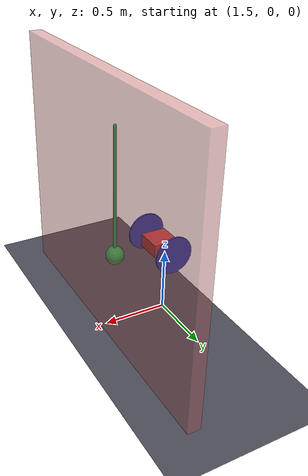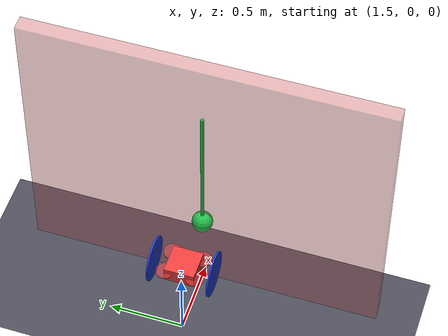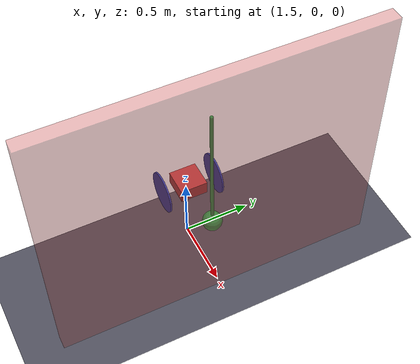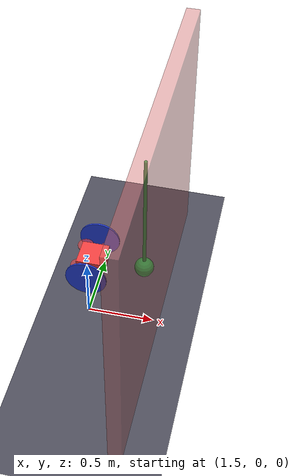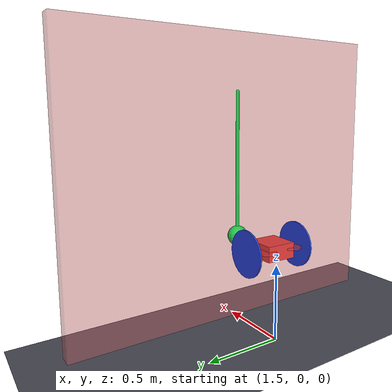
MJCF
<mujoco>
  <compiler balanceinertia="true"/>
  <statistic extent="3" center="0 0 0.5"/>
  <option gravity="0 0 -9.81" timestep="0.001" iterations="100" noslip_iterations="0"/>
  <visual>
    <headlight ambient="0.35 0.35 0.35" diffuse="0.65 0.65 0.65" specular="0.2 0.2 0.2"/>
    <global offwidth="1920" offheight="1080"/>
    <map force="0.06"/>
    <scale contactwidth="0.08" contactheight="0.03"/>
  </visual>

  <default>
    <motor ctrllimited="true" ctrlrange="0 20"/>
  </default>

  <asset>
    <texture type="2d" name="checker" builtin="checker" rgb1=".34 .40 .46" rgb2=".22 .27 .32" width="512" height="512"/>
    <material name="floor_mat" texture="checker" texrepeat="5 5" texuniform="true" specular="0.15" shininess="0.2" rgba="1 1 1 1"/>

  </asset>

  <worldbody>
    <light ambient=".2 .2 .2" diffuse="1 1 1" pos="0 0 3.5" dir="0 0 -1"/>
    <light ambient=".08 .08 .08" diffuse=".55 .55 .55" pos="-2 -1 4" dir="0.35 0.2 -1"/>
    <geom name="surface_geom" solref="0.002 1" contype="1" conaffinity="1" material="floor_mat" rgba="0.3 0.3 0.35 1" type="plane" size="3 3 0.1"/>

    <body name="wall" pos="2 0 1">
      <!-- The geom name must match paths.WALL_GEOM_NAME: contact reporting keys
           the "wall" contact-summary group off it, and the log review scripts
           match it by name. -->
      <geom name="wall_geom" type="box" size="0.05 1.2 1" euler="0 0 0" condim="4" rgba="0.8 0.4 0.4 0.45" solref="0.002 1" friction="1.2 0.005 0.0001" contype="1" conaffinity="1"/>
    </body>

    <body name="wall_overlay" pos="0 0 0">
      <geom name="overlay_reference_0_path" type="capsule" fromto="1.93 0 0.6 1.93 0 1.6" size="0.012" rgba="0.15 0.75 0.3 0.95" contype="0" conaffinity="0" group="1"/>
    </body>
    <body name="overlay_reference_marker_0" mocap="true" pos="1.93 0 0.6">
      <geom name="overlay_reference_marker_0_geom" type="sphere" size="0.07" rgba="0.15 0.75 0.3 0.95" contype="0" conaffinity="0" group="1"/>
    </body>

    <body name="drone" pos="1.55 0 0.6">
      <joint type="free"/>
      <inertial pos="0 0 0" mass="0.8" diaginertia="0.006 0.004 0.007"/>
      <site name="prop_fr" pos="0.08 -0.1 0.012" zaxis="0 0 1" type="cylinder" size="0.06 0.005" rgba="0.92 0.24 0.24 0.55"/>
      <site name="prop_fl" pos="0.08 0.1 0.012" zaxis="0 0 1" type="cylinder" size="0.06 0.005" rgba="0.92 0.24 0.24 0.55"/>
      <site name="prop_br" pos="-0.08 -0.1 0.012" zaxis="0 0 1" type="cylinder" size="0.06 0.005" rgba="0.92 0.24 0.24 0.55"/>
      <site name="prop_bl" pos="-0.08 0.1 0.012" zaxis="0 0 1" type="cylinder" size="0.06 0.005" rgba="0.92 0.24 0.24 0.55"/>
      <geom name="drone_body_box" type="box" size="0.1 0.05 0.1" euler="90 0 0" mass="0" group="0" rgba="0.92 0.24 0.24 1" contype="1" conaffinity="1"/>
      <body name="right_wheel" pos="0 -0.2 0">
        <joint name="joint_rw" type="hinge" axis="0 1 0" damping="0.001"/>
        <geom name="right_wheel_geom" type="cylinder" size="0.15 0.006" euler="90 0 0" mass="0.1" rgba="0.15 0.25 0.85 1" solref="0.01 1" friction="1.2 0.005 0.0001" contype="1" conaffinity="1"/>
      </body>
      <body name="left_wheel" pos="0 0.2 0">
        <joint name="joint_lw" type="hinge" axis="0 1 0" damping="0.001"/>
        <geom name="left_wheel_geom" type="cylinder" size="0.15 0.006" euler="90 0 0" mass="0.1" rgba="0.15 0.25 0.85 1" solref="0.01 1" friction="1.2 0.005 0.0001" contype="1" conaffinity="1"/>
      </body>
    </body>
  </worldbody>

  <actuator>
    <motor name="drone_thrust_fr" site="prop_fr" gear="0 0 1 0 0 -0.015"/>
    <motor name="drone_thrust_fl" site="prop_fl" gear="0 0 1 0 0 0.015"/>
    <motor name="drone_thrust_br" site="prop_br" gear="0 0 1 0 0 0.015"/>
    <motor name="drone_thrust_bl" site="prop_bl" gear="0 0 1 0 0 -0.015"/>
  </actuator>

  <sensor>
    <framepos name="drone_position" objtype="xbody" objname="drone"/>
    <framelinvel name="drone_linear_velocity" objtype="xbody" objname="drone"/>
    <frameangvel name="drone_angular_velocity" objtype="xbody" objname="drone"/>
    <framexaxis name="drone_x_axis" objtype="xbody" objname="drone"/>
    <frameyaxis name="drone_y_axis" objtype="xbody" objname="drone"/>
    <framezaxis name="drone_z_axis" objtype="xbody" objname="drone"/>
  </sensor>
</mujoco>
